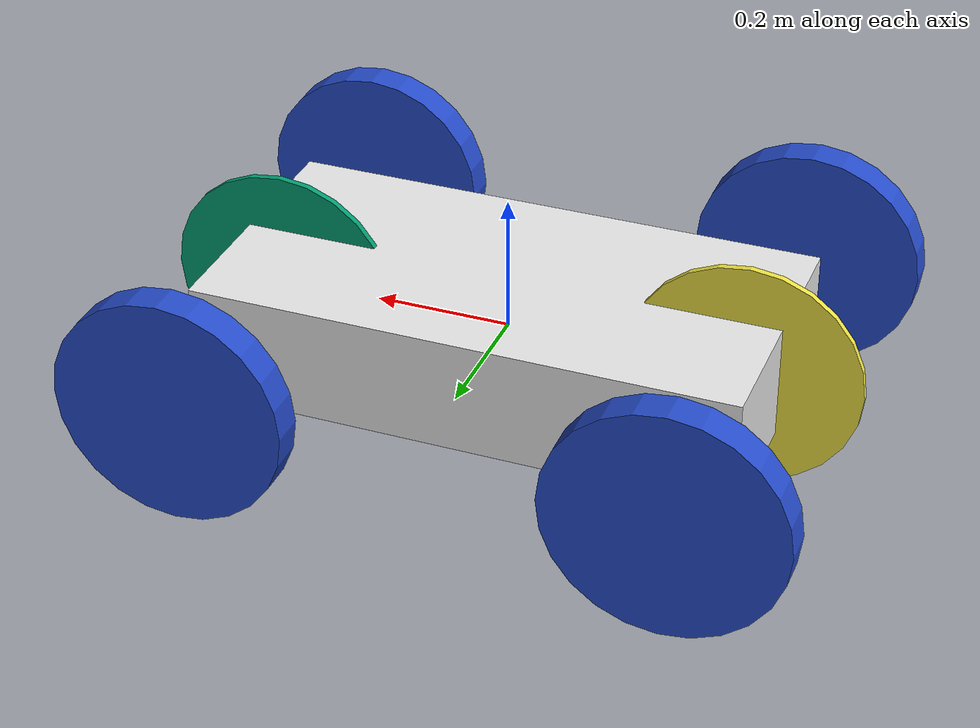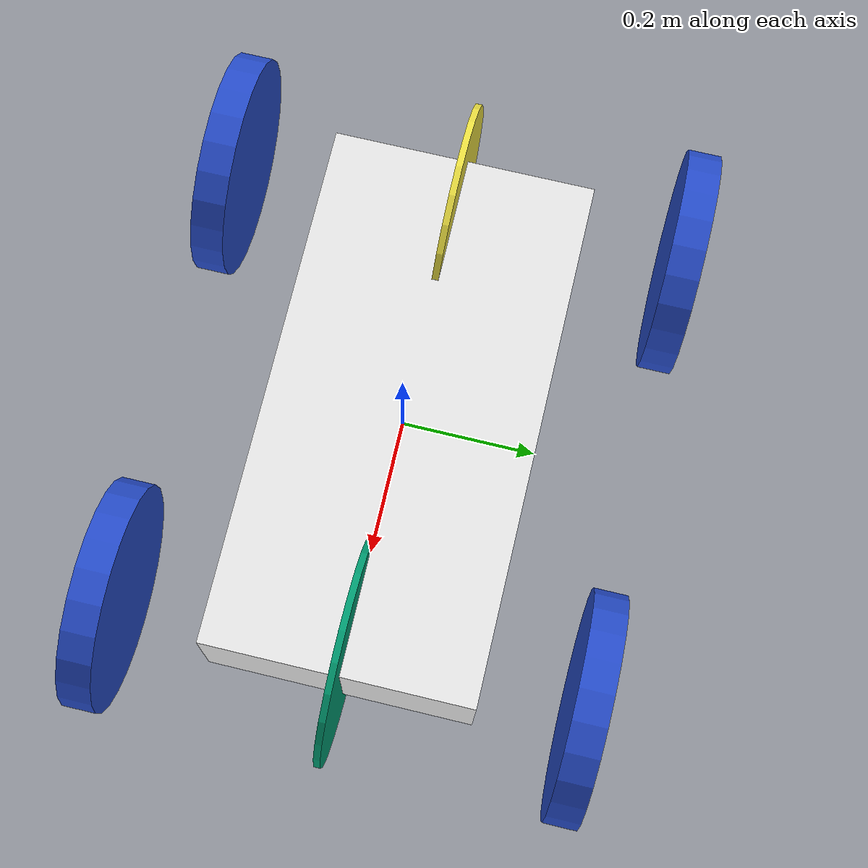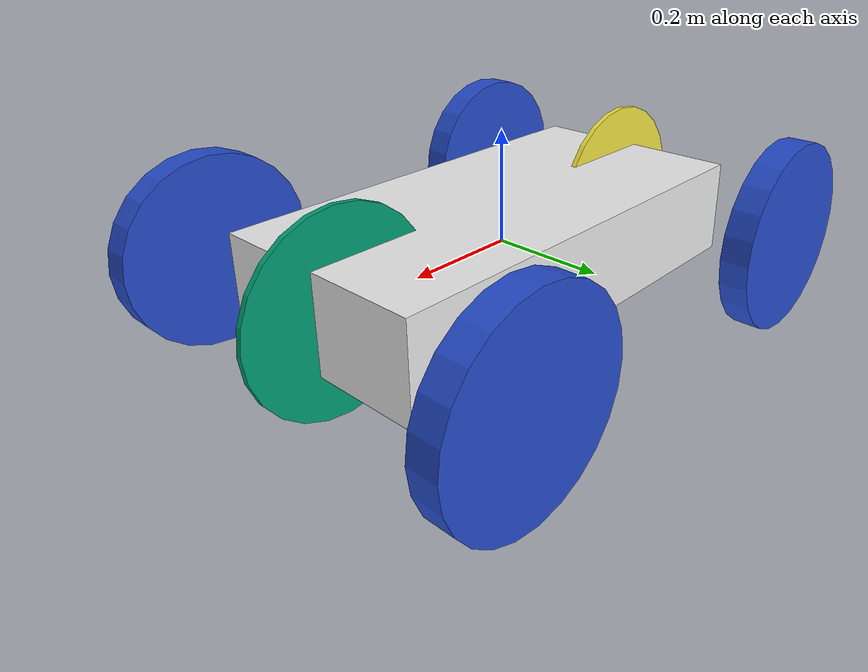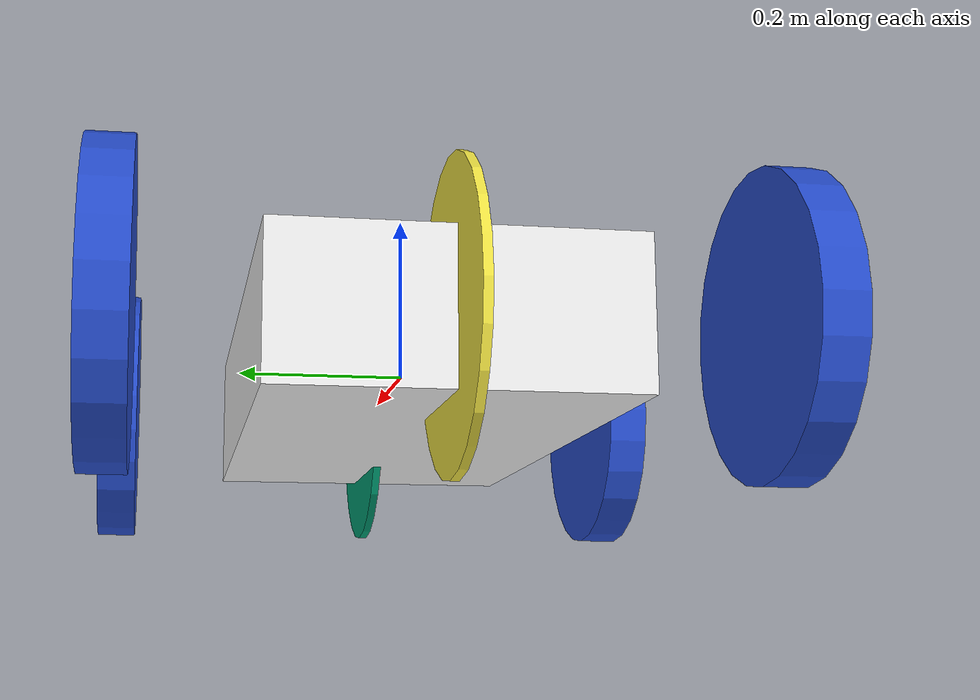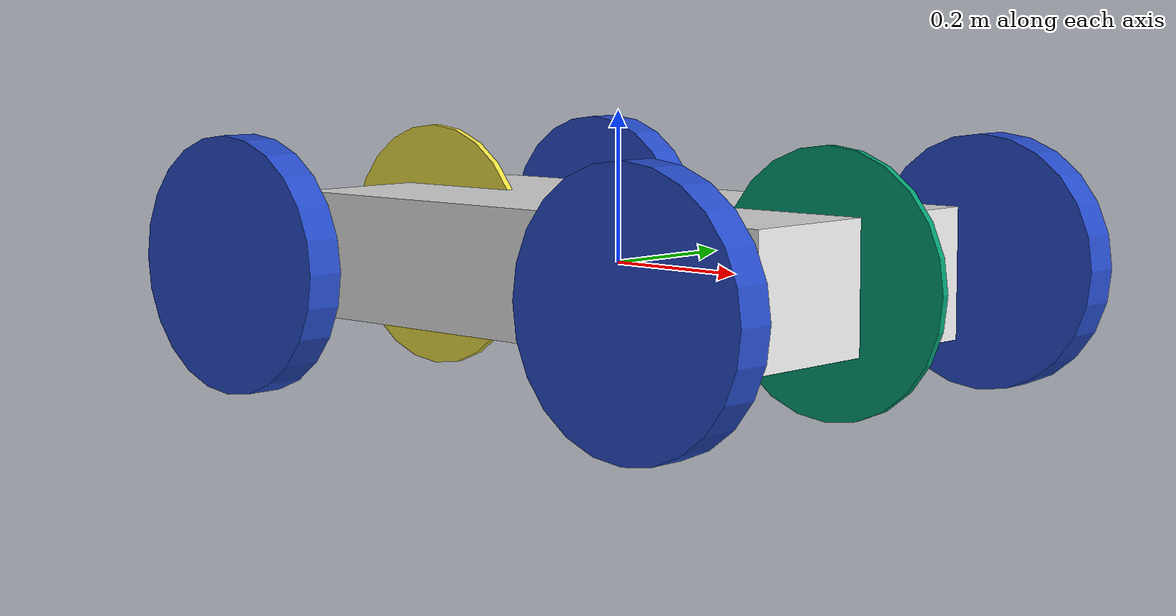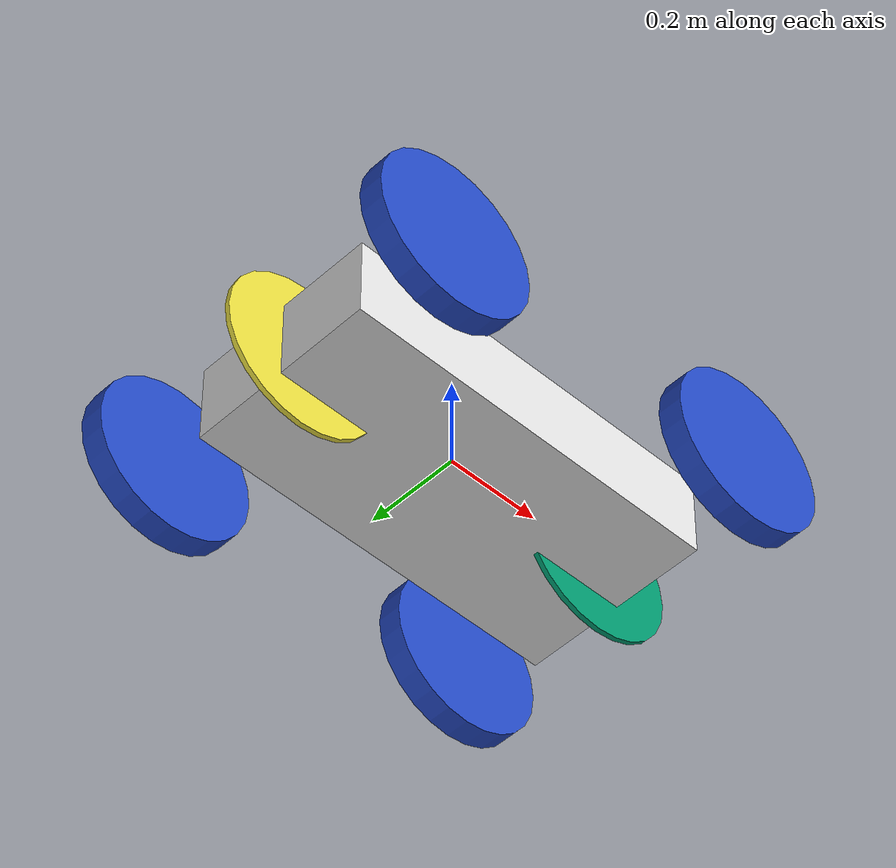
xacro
<?xml version="1.0"?>
<robot name="ackrm_robot"
  xmlns:xacro="http://ros.org/wiki/xacro">

  <!--MATERIALS-->

  <!-- XACRO PROPERTIES -->
  <xacro:property name="PI" value="3.1415926535897931"/>
  <xacro:property name="base_length" value="0.8" />
  <xacro:property name="base_width" value="0.4" />
  <xacro:property name="base_heigth" value="0.17" />
  <xacro:property name="base_mass" value="${base_length*base_width*base_heigth*500}" />
  <xacro:property name="wheel_radius" value="0.17" />
  <xacro:property name="wheel_heigth" value="0.05" />
  <xacro:property name="wheel_mass" value="${pi*wheel_radius*wheel_radius*wheel_heigth*500}" />
  <xacro:property name="pivot_radius" value="${wheel_heigth/2-0.01}" />
  <xacro:property name="pivot_heigth" value="${1.4*wheel_radius}" />
  <xacro:property name="pivot_mass" value="${pi*pivot_radius*pivot_radius*pivot_heigth*500}" />

  <!-- XACRO LIBRARIES -->
  <xacro:include filename="inertia.xacro" />
  <xacro:include filename="cylinder_wheel.xacro" />

<!-- Example link -->
<link name="base_root">
</link>

<joint name="base_root_joint" type="fixed">
  <parent link="base_root"/>
  <child link="base_link"/>
  <origin xyz="0 0 0"/>
</joint>

  <!-- BASE LINK DEFINITION -->
  <link name="base_link">
    <visual>
      <geometry>
        <box size="${base_length} ${base_width} ${base_heigth}" />
      </geometry>
      <material name="white" />
    </visual>
    <collision>
      <geometry>
        <box size="${base_length} ${base_width} ${base_heigth}" />
      </geometry>
    </collision>
    <inertial>
      <mass value="${base_mass}" />
      <origin rpy="0 0 0" xyz="0 0 0" />
      <xacro:box_inertia m="${base_mass}" l="${base_length}" w="${base_width}" h="${base_heigth}"/>
    </inertial>
  </link>

  <!-- VIRTUAL WHEELS-->
  <!-- virtual front wheel -->

  <link name="virtual_front_wheel">
    <visual>
      <origin xyz="0 0 0" rpy="${PI/2} 0 ${PI/2}"/>
      <geometry>
        <cylinder length="0.01" radius="${wheel_radius}"/>
      </geometry>
      <material name="invisible"/>
    </visual>
  </link>

  <joint name="virtual_front_wheel_joint" type="revolute">
    <parent link="base_link"/>
    <child link="virtual_front_wheel"/>
    <origin xyz="0.35 0 0" rpy="0 0 ${PI/2}"/>
    <axis xyz="0 0 1"/>
    <limit lower="-${PI/4}" upper="${PI/4}" effort="100.0" velocity="0.0"/>
    <dynamics damping="0.2"/>
  </joint>

  <!-- virtual back wheel -->

  <link name="virtual_back_wheel">
    <visual>
      <origin xyz="0 0 0" rpy="${PI/2} 0 ${PI/2}"/>
      <geometry>
        <cylinder length="0.01" radius="${wheel_radius}"/>
      </geometry>
      <material name="invisible"/>
    </visual>
  </link>

  <joint name="virtual_back_wheel_joint" type="continuous">
    <parent link="base_link"/>
    <child link="virtual_back_wheel"/>
    <origin xyz="-0.35 0 0" rpy="0 0 ${PI/2}"/>
    <axis xyz="1 0 0"/>
    <limit effort="100.0" velocity="100.0"/>
    <dynamics damping="0.2"/>
  </joint>

  <!-- WHEELS MACRO CALL -->
  <xacro:cylinder_wheel name="back_right"
    wr="${wheel_radius}"
    wh="${wheel_heigth}"
    wm="${wheel_mass}"
    parent="base_link"
    xpos="-0.35"
    ypos="-0.35"
    mimic="back"
    axis= "1 0 0"/>

  <xacro:cylinder_wheel name="back_left"
    wr="${wheel_radius}"
    wh="${wheel_heigth}"
    wm="${wheel_mass}"
    parent="base_link"
    xpos="-0.35"
    ypos="0.35"
    mimic="back"
    axis="1 0 0"/>

  <xacro:cylinder_wheel name="front_right"
    wr="${wheel_radius}"
    wh="${wheel_heigth}"
    wm="${wheel_mass}"
    parent="base_link"
    xpos="0.35"
    ypos="0.35"
    mimic="front"
    axis="0 0 1"/>

  <xacro:cylinder_wheel name="front_left"
    wr="${wheel_radius}"
    wh="${wheel_heigth}"
    wm="${wheel_mass}"
    parent="base_link"
    xpos="0.35"
    ypos="-0.35"
    mimic="front"
    axis="0 0 1"/>

</robot>

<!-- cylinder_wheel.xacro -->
<robot name="cylinder_wheel"
  xmlns:xacro="http://www.ros.org/wiki/xacro">

  <xacro:include filename="inertia.xacro" />

  <xacro:macro name="cylinder_wheel" params="name wr wh wm parent xpos ypos mimic axis">
    <link name="${name}_wheel">
      <visual>
        <geometry>
          <cylinder length="${wh}" radius="${wr}" />
        </geometry>
        <origin rpy="1.57 0 0" xyz="0 0 0" />
        <material name="blue" />
      </visual>
      <collision>
        <geometry>
          <cylinder length="${wh}" radius="${wr}" />
        </geometry>
        <origin rpy="1.57 0 0" xyz="0 0 0" />
      </collision>
      <inertial>
        <mass value="${wm}" />
        <origin rpy="1.57 0 0" xyz="0 0 0" />
        <xacro:cylinder_inertia m="${wm}" r="${wr}" h="${wh}" />
      </inertial>
    </link>

    <joint name="${name}_wheel_joint" type="continuous">
      <parent link="${parent}" />
      <child link="${name}_wheel" />
      <origin xyz="${xpos} ${ypos} 0" rpy="0 0 0" />
      <axis xyz="${axis}" rpy="0 0 0" />
      <limit effort="1000" velocity="100" />
      <joint_properties damping="0.0" friction="10.0" />
      <mimic joint="virtual_${mimic}_wheel_joint" multiplier="1.0" offset="0.0"/>
    </joint>

    <transmission name="${name}_wheel_trans">
      <type>transmission_interface/SimpleTransmission</type>
      <joint name="${name}_wheel_joint">
        <hardwareInterface>hardware_interface/VelocityJointInterface</hardwareInterface>
      </joint>
      <actuator name="${name}_wheel_motor">
        <mechanicalReduction>1</mechanicalReduction>
      </actuator>
    </transmission>

    <gazebo reference="${name}_wheel">
      <mu1 value="200.0" />
      <mu2 value="100.0" />
      <fdir1 value="1 0 0" />
      <kp value="10000000.0" />
      <kd value="1.0" />
      <material>Gazebo/Blue</material>
      <turnGravityOff>false</turnGravityOff>
    </gazebo>
  </xacro:macro>

</robot>
